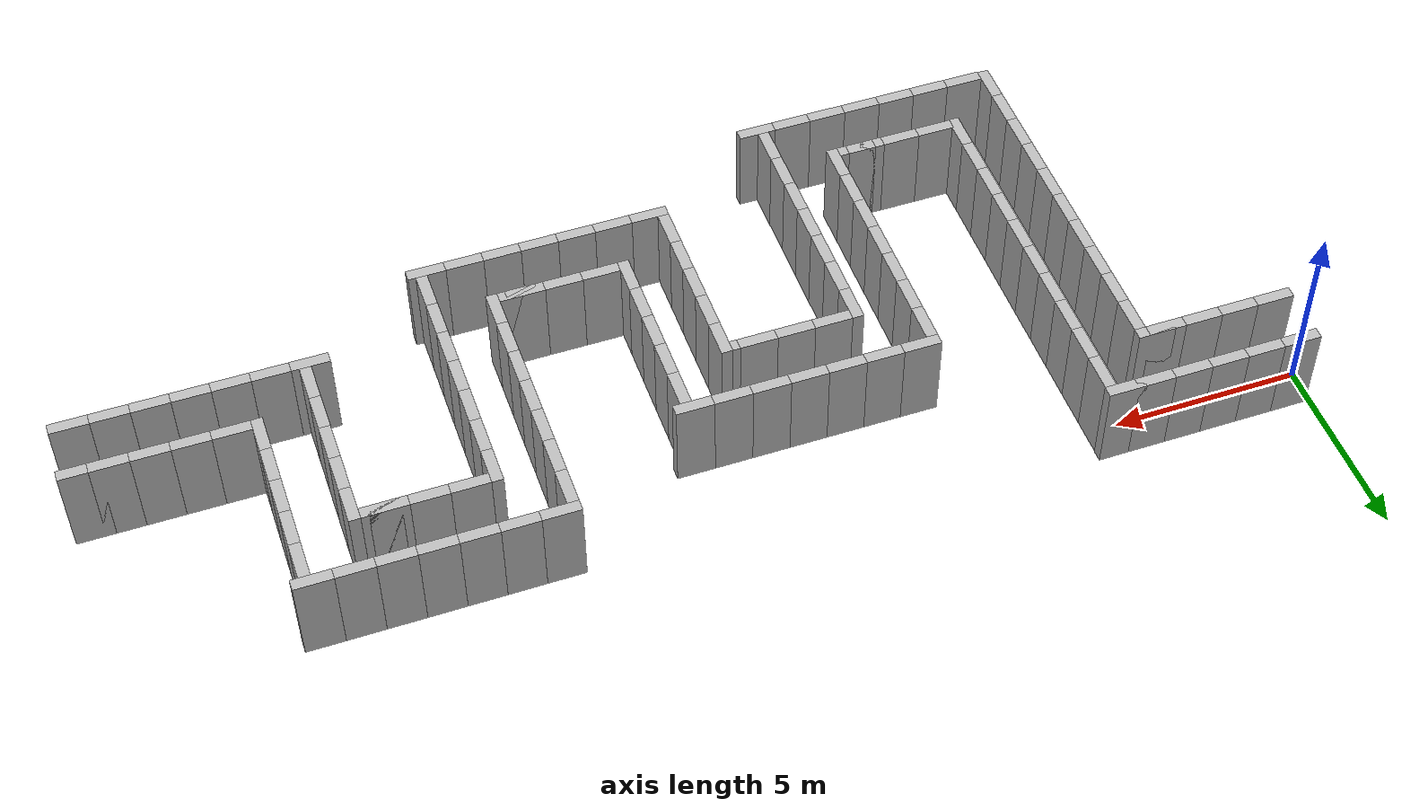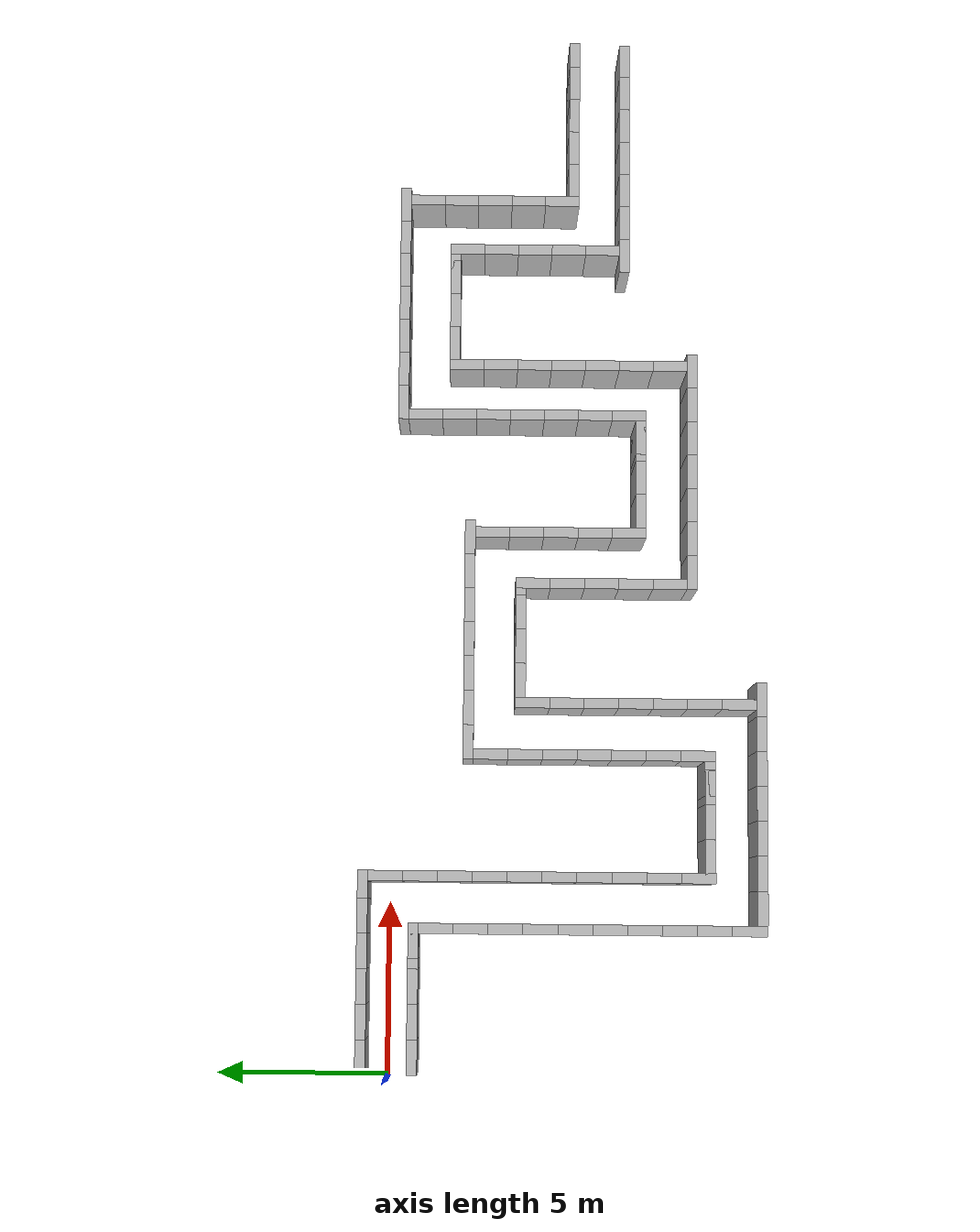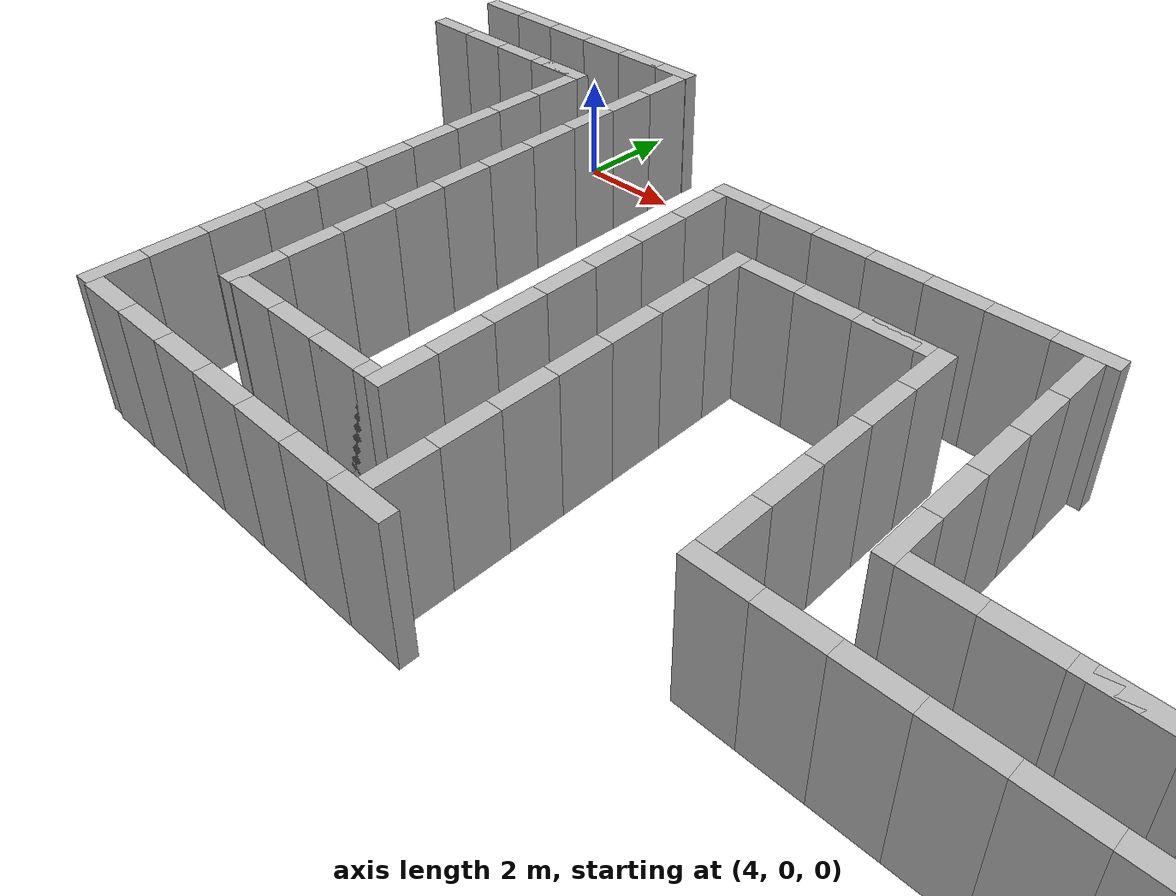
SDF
<?xml version="1.0" ?>
<sdf version="1.5">
  <model name="corridor_walls">

    <include>
      <name>w1</name>
      <pose>0.6 0.74 0 0 0 0</pose>
      <uri>model://concrete_wall_1m</uri>
    </include>
    <include>
      <name>w2</name>
      <pose>1.6 0.74 0 0 0 0</pose>
      <uri>model://concrete_wall_1m</uri>
    </include>
    <include>
      <name>w3</name>
      <pose>2.6 0.74 0 0 0 0</pose>
      <uri>model://concrete_wall_1m</uri>
    </include>
    <include>
      <name>w4</name>
      <pose>3.6 0.74 0 0 0 0</pose>
      <uri>model://concrete_wall_1m</uri>
    </include>
    <include>
      <name>w5</name>
      <pose>4.6 0.74 0 0 0 0</pose>
      <uri>model://concrete_wall_1m</uri>
    </include>
    <include>
      <name>w6</name>
      <pose>5.4 0.74 0 0 0 0</pose>
      <uri>model://concrete_wall_1m</uri>
    </include>

    <include>
      <name>w7</name>
      <pose>5.74 0.09 0 0 0 1.5708</pose>
      <uri>model://concrete_wall_1m</uri>
    </include>
    <include>
      <name>w8</name>
      <pose>5.74 -0.91 0 0 0 1.5708</pose>
      <uri>model://concrete_wall_1m</uri>
    </include>
    <include>
      <name>w9</name>
      <pose>5.74 -1.91 0 0 0 1.5708</pose>
      <uri>model://concrete_wall_1m</uri>
    </include>
    <include>
      <name>w10</name>
      <pose>5.74 -2.91 0 0 0 1.5708</pose>
      <uri>model://concrete_wall_1m</uri>
    </include>
    <include>
      <name>w11</name>
      <pose>5.74 -3.91 0 0 0 1.5708</pose>
      <uri>model://concrete_wall_1m</uri>
    </include>
    <include>
      <name>w12</name>
      <pose>5.74 -4.91 0 0 0 1.5708</pose>
      <uri>model://concrete_wall_1m</uri>
    </include>
    <include>
      <name>w13</name>
      <pose>5.74 -5.91 0 0 0 1.5708</pose>
      <uri>model://concrete_wall_1m</uri>
    </include>
    <include>
      <name>w14</name>
      <pose>5.74 -6.91 0 0 0 1.5708</pose>
      <uri>model://concrete_wall_1m</uri>
    </include>
    <include>
      <name>w15</name>
      <pose>5.74 -7.91 0 0 0 1.5708</pose>
      <uri>model://concrete_wall_1m</uri>
    </include>
    <include>
      <name>w16</name>
      <pose>5.74 -8.91 0 0 0 1.5708</pose>
      <uri>model://concrete_wall_1m</uri>
    </include>

    <include>
      <name>e1</name>
      <pose>0.6 -0.73 0 0 0 0</pose>
      <uri>model://concrete_wall_1m</uri>
    </include>
    <include>
      <name>e2</name>
      <pose>1.6 -0.73 0 0 0 0</pose>
      <uri>model://concrete_wall_1m</uri>
    </include>
    <include>
      <name>e3</name>
      <pose>2.6 -0.73 0 0 0 0</pose>
      <uri>model://concrete_wall_1m</uri>
    </include>
    <include>
      <name>e4</name>
      <pose>3.6 -0.73 0 0 0 0</pose>
      <uri>model://concrete_wall_1m</uri>
    </include>
    <include>
      <name>e5</name>
      <pose>3.9 -0.73 0 0 0 0</pose>
      <uri>model://concrete_wall_1m</uri>
    </include>

    <include>
      <name>e6</name>
      <pose>4.25 -1.37 0 0 0 1.5708</pose>
      <uri>model://concrete_wall_1m</uri>
    </include>
    <include>
      <name>e7</name>
      <pose>4.25 -2.37 0 0 0 1.5708</pose>
      <uri>model://concrete_wall_1m</uri>
    </include>
    <include>
      <name>e8</name>
      <pose>4.25 -3.37 0 0 0 1.5708</pose>
      <uri>model://concrete_wall_1m</uri>
    </include>
    <include>
      <name>e9</name>
      <pose>4.25 -4.37 0 0 0 1.5708</pose>
      <uri>model://concrete_wall_1m</uri>
    </include>
    <include>
      <name>e10</name>
      <pose>4.25 -5.37 0 0 0 1.5708</pose>
      <uri>model://concrete_wall_1m</uri>
    </include>
    <include>
      <name>e11</name>
      <pose>4.25 -6.37 0 0 0 1.5708</pose>
      <uri>model://concrete_wall_1m</uri>
    </include>
    <include>
      <name>e12</name>
      <pose>4.25 -7.37 0 0 0 1.5708</pose>
      <uri>model://concrete_wall_1m</uri>
    </include>
    <include>
      <name>e13</name>
      <pose>4.25 -8.37 0 0 0 1.5708</pose>
      <uri>model://concrete_wall_1m</uri>
    </include>
    <include>
      <name>e14</name>
      <pose>4.25 -9.37 0 0 0 1.5708</pose>
      <uri>model://concrete_wall_1m</uri>
    </include>
    <include>
      <name>e15</name>
      <pose>4.25 -10.37 0 0 0 1.5708</pose>
      <uri>model://concrete_wall_1m</uri>
    </include>

    <include>
      <name>e16</name>
      <pose>4.9 -10.75 0 0 0 0</pose>
      <uri>model://concrete_wall_1m</uri>
    </include>
    <include>
      <name>e17</name>
      <pose>5.9 -10.75 0 0 0 0</pose>
      <uri>model://concrete_wall_1m</uri>
    </include>
    <include>
      <name>e18</name>
      <pose>6.9 -10.75 0 0 0 0</pose>
      <uri>model://concrete_wall_1m</uri>
    </include>
    <include>
      <name>e19</name>
      <pose>7.9 -10.75 0 0 0 0</pose>
      <uri>model://concrete_wall_1m</uri>
    </include>
    <include>
      <name>e20</name>
      <pose>8.9 -10.75 0 0 0 0</pose>
      <uri>model://concrete_wall_1m</uri>
    </include>
    <include>
      <name>e21</name>
      <pose>9.9 -10.75 0 0 0 0</pose>
      <uri>model://concrete_wall_1m</uri>
    </include>
    <include>
      <name>e22</name>
      <pose>10.9 -10.75 0 0 0 0</pose>
      <uri>model://concrete_wall_1m</uri>
    </include>

    <include>
      <name>e23</name>
      <pose>9.25 -3.9 0 0 0 1.5708</pose>
      <uri>model://concrete_wall_1m</uri>
    </include>
    <include>
      <name>e24</name>
      <pose>9.25 -4.9 0 0 0 1.5708</pose>
      <uri>model://concrete_wall_1m</uri>
    </include>
    <include>
      <name>e25</name>
      <pose>9.25 -5.9 0 0 0 1.5708</pose>
      <uri>model://concrete_wall_1m</uri>
    </include>
    <include>
      <name>e26</name>
      <pose>9.25 -6.9 0 0 0 1.5708</pose>
      <uri>model://concrete_wall_1m</uri>
    </include>
    <include>
      <name>e27</name>
      <pose>9.25 -7.9 0 0 0 1.5708</pose>
      <uri>model://concrete_wall_1m</uri>
    </include>
    <include>
      <name>f28</name>
      <pose>9.25 -8.9 0 0 0 1.5708</pose>
      <uri>model://concrete_wall_1m</uri>
    </include>
    <include>
      <name>f29</name>
      <pose>9.25 -2.9 0 0 0 1.5708</pose>
      <uri>model://concrete_wall_1m</uri>
    </include>

    <include>
      <name>e28</name>
      <pose>14.25 -4.1 0 0 0 1.5708</pose>
      <uri>model://concrete_wall_1m</uri>
    </include>
    <include>
      <name>e29</name>
      <pose>14.25 -5.1 0 0 0 1.5708</pose>
      <uri>model://concrete_wall_1m</uri>
    </include>
    <include>
      <name>e30</name>
      <pose>14.25 -6.1 0 0 0 1.5708</pose>
      <uri>model://concrete_wall_1m</uri>
    </include>
    <include>
      <name>e31</name>
      <pose>14.25 -7.1 0 0 0 1.5708</pose>
      <uri>model://concrete_wall_1m</uri>
    </include>
    <include>
      <name>e32</name>
      <pose>14.25 -8.1 0 0 0 1.5708</pose>
      <uri>model://concrete_wall_1m</uri>
    </include>

    <include>
      <name>e33</name>
      <pose>20.75 -4.1 0 0 0 1.5708</pose>
      <uri>model://concrete_wall_1m</uri>
    </include>
    <include>
      <name>e34</name>
      <pose>20.75 -5.1 0 0 0 1.5708</pose>
      <uri>model://concrete_wall_1m</uri>
    </include>
    <include>
      <name>e35</name>
      <pose>20.75 -6.1 0 0 0 1.5708</pose>
      <uri>model://concrete_wall_1m</uri>
    </include>
    <include>
      <name>e36</name>
      <pose>20.75 -7.1 0 0 0 1.5708</pose>
      <uri>model://concrete_wall_1m</uri>
    </include>
    <include>
      <name>e37</name>
      <pose>20.75 -8.1 0 0 0 1.5708</pose>
      <uri>model://concrete_wall_1m</uri>
    </include>

    <include>
      <name>e38</name>
      <pose>24.25 -4.1 0 0 0 1.5708</pose>
      <uri>model://concrete_wall_1m</uri>
    </include>
    <include>
      <name>e39</name>
      <pose>24.25 -5.1 0 0 0 1.5708</pose>
      <uri>model://concrete_wall_1m</uri>
    </include>
    <include>
      <name>e40</name>
      <pose>24.25 -6.1 0 0 0 1.5708</pose>
      <uri>model://concrete_wall_1m</uri>
    </include>
    <include>
      <name>e41</name>
      <pose>20.75 -2.1 0 0 0 1.5708</pose>
      <uri>model://concrete_wall_1m</uri>
    </include>
    <include>
      <name>e42</name>
      <pose>20.75 -3.1 0 0 0 1.5708</pose>
      <uri>model://concrete_wall_1m</uri>
    </include>

    <include>
      <name>e43</name>
      <pose>24.25 -3.1 0 0 0 1.5708</pose>
      <uri>model://concrete_wall_1m</uri>
    </include>
    <include>
      <name>e44</name>
      <pose>24.25 -2.1 0 0 0 1.5708</pose>
      <uri>model://concrete_wall_1m</uri>
    </include>

    <include>
      <name>e47</name>
      <pose>15.75 -5.9 0 0 0 1.5708</pose>
      <uri>model://concrete_wall_1m</uri>
    </include>
    <include>
      <name>e48</name>
      <pose>15.75 -6.9 0 0 0 1.5708</pose>
      <uri>model://concrete_wall_1m</uri>
    </include>
    <include>
      <name>e49</name>
      <pose>15.75 -4.9 0 0 0 1.5708</pose>
      <uri>model://concrete_wall_1m</uri>
    </include>
    <include>
      <name>e50</name>
      <pose>15.75 -3.9 0 0 0 1.5708</pose>
      <uri>model://concrete_wall_1m</uri>
    </include>
    <include>
      <name>e51</name>
      <pose>15.75 -2.9 0 0 0 1.5708</pose>
      <uri>model://concrete_wall_1m</uri>
    </include>

    <include>
      <name>e52</name>
      <pose>19.25 -5.9 0 0 0 1.5708</pose>
      <uri>model://concrete_wall_1m</uri>
    </include>
    <include>
      <name>e53</name>
      <pose>19.25 -6.9 0 0 0 1.5708</pose>
      <uri>model://concrete_wall_1m</uri>
    </include>
    <include>
      <name>e54</name>
      <pose>19.25 -4.9 0 0 0 1.5708</pose>
      <uri>model://concrete_wall_1m</uri>
    </include>
    <include>
      <name>e55</name>
      <pose>19.25 -3.9 0 0 0 1.5708</pose>
      <uri>model://concrete_wall_1m</uri>
    </include>
    <include>
      <name>e56</name>
      <pose>19.25 -2.9 0 0 0 1.5708</pose>
      <uri>model://concrete_wall_1m</uri>
    </include>
    <include>
      <name>e57</name>
      <pose>19.25 -1.9 0 0 0 1.5708</pose>
      <uri>model://concrete_wall_1m</uri>
    </include>
    <include>
      <name>e58</name>
      <pose>19.25 -0.9 0 0 0 1.5708</pose>
      <uri>model://concrete_wall_1m</uri>
    </include>

    <include>
      <name>e59</name>
      <pose>25.75 -4.9 0 0 0 1.5708</pose>
      <uri>model://concrete_wall_1m</uri>
    </include>
    <include>
      <name>e60</name>
      <pose>25.75 -3.9 0 0 0 1.5708</pose>
      <uri>model://concrete_wall_1m</uri>
    </include>
    <include>
      <name>e61</name>
      <pose>25.75 -2.9 0 0 0 1.5708</pose>
      <uri>model://concrete_wall_1m</uri>
    </include>
    <include>
      <name>e62</name>
      <pose>25.75 -1.9 0 0 0 1.5708</pose>
      <uri>model://concrete_wall_1m</uri>
    </include>
    <include>
      <name>e63</name>
      <pose>25.75 -0.9 0 0 0 1.5708</pose>
      <uri>model://concrete_wall_1m</uri>
    </include>

    <include>
      <name>e64</name>
      <pose>10.75 -10.1 0 0 0 1.5708</pose>
      <uri>model://concrete_wall_1m</uri>
    </include>
    <include>
      <name>e65</name>
      <pose>10.75 -9.1 0 0 0 1.5708</pose>
      <uri>model://concrete_wall_1m</uri>
    </include>
    <include>
      <name>e66</name>
      <pose>10.75 -8.1 0 0 0 1.5708</pose>
      <uri>model://concrete_wall_1m</uri>
    </include>
    <include>
      <name>e67</name>
      <pose>10.75 -7.1 0 0 0 1.5708</pose>
      <uri>model://concrete_wall_1m</uri>
    </include>
    <include>
      <name>e68</name>
      <pose>10.75 -6.1 0 0 0 1.5708</pose>
      <uri>model://concrete_wall_1m</uri>
    </include>
    <include>
      <name>e69</name>
      <pose>10.75 -5.1 0 0 0 1.5708</pose>
      <uri>model://concrete_wall_1m</uri>
    </include>
    <include>
      <name>e70</name>
      <pose>10.75 -4.1 0 0 0 1.5708</pose>
      <uri>model://concrete_wall_1m</uri>
    </include>

    <include>
      <name>g1</name>
      <pose>9.6 -2.25 0 0 0 0</pose>
      <uri>model://concrete_wall_1m</uri>
    </include>
    <include>
      <name>g2</name>
      <pose>10.6 -2.25 0 0 0 0</pose>
      <uri>model://concrete_wall_1m</uri>
    </include>
    <include>
      <name>g3</name>
      <pose>11.6 -2.25 0 0 0 0</pose>
      <uri>model://concrete_wall_1m</uri>
    </include>
    <include>
      <name>g4</name>
      <pose>12.6 -2.25 0 0 0 0</pose>
      <uri>model://concrete_wall_1m</uri>
    </include>
    <include>
      <name>g5</name>
      <pose>13.6 -2.25 0 0 0 0</pose>
      <uri>model://concrete_wall_1m</uri>
    </include>
    <include>
      <name>g6</name>
      <pose>14.6 -2.25 0 0 0 0</pose>
      <uri>model://concrete_wall_1m</uri>
    </include>
    <include>
      <name>g7</name>
      <pose>15.6 -2.25 0 0 0 0</pose>
      <uri>model://concrete_wall_1m</uri>
    </include>

    <include>
      <name>g8</name>
      <pose>14.6 -8.75 0 0 0 0</pose>
      <uri>model://concrete_wall_1m</uri>
    </include>
    <include>
      <name>g9</name>
      <pose>15.6 -8.75 0 0 0 0</pose>
      <uri>model://concrete_wall_1m</uri>
    </include>
    <include>
      <name>g10</name>
      <pose>16.6 -8.75 0 0 0 0</pose>
      <uri>model://concrete_wall_1m</uri>
    </include>
    <include>
      <name>g11</name>
      <pose>17.6 -8.75 0 0 0 0</pose>
      <uri>model://concrete_wall_1m</uri>
    </include>
    <include>
      <name>g12</name>
      <pose>18.6 -8.75 0 0 0 0</pose>
      <uri>model://concrete_wall_1m</uri>
    </include>
    <include>
      <name>g13</name>
      <pose>19.6 -8.75 0 0 0 0</pose>
      <uri>model://concrete_wall_1m</uri>
    </include>
    <include>
      <name>g14</name>
      <pose>20.6 -8.75 0 0 0 0</pose>
      <uri>model://concrete_wall_1m</uri>
    </include>

    <include>
      <name>g15</name>
      <pose>19.6 -0.25 0 0 0 0</pose>
      <uri>model://concrete_wall_1m</uri>
    </include>
    <include>
      <name>g16</name>
      <pose>20.6 -0.25 0 0 0 0</pose>
      <uri>model://concrete_wall_1m</uri>
    </include>
    <include>
      <name>g17</name>
      <pose>21.6 -0.25 0 0 0 0</pose>
      <uri>model://concrete_wall_1m</uri>
    </include>
    <include>
      <name>g18</name>
      <pose>22.6 -0.25 0 0 0 0</pose>
      <uri>model://concrete_wall_1m</uri>
    </include>
    <include>
      <name>g19</name>
      <pose>23.6 -0.25 0 0 0 0</pose>
      <uri>model://concrete_wall_1m</uri>
    </include>
    <include>
      <name>g20</name>
      <pose>24.6 -0.25 0 0 0 0</pose>
      <uri>model://concrete_wall_1m</uri>
    </include>
    <include>
      <name>g21</name>
      <pose>25.6 -0.25 0 0 0 0</pose>
      <uri>model://concrete_wall_1m</uri>
    </include>

    <include>
      <name>g22</name>
      <pose>30.1 -6.75 0 0 0 0</pose>
      <uri>model://concrete_wall_1m</uri>
    </include>
    <include>
      <name>g23</name>
      <pose>29.1 -6.75 0 0 0 0</pose>
      <uri>model://concrete_wall_1m</uri>
    </include>
    <include>
      <name>g24</name>
      <pose>28.1 -6.75 0 0 0 0</pose>
      <uri>model://concrete_wall_1m</uri>
    </include>
    <include>
      <name>g25</name>
      <pose>27.1 -6.75 0 0 0 0</pose>
      <uri>model://concrete_wall_1m</uri>
    </include>
    <include>
      <name>g26</name>
      <pose>26.1 -6.75 0 0 0 0</pose>
      <uri>model://concrete_wall_1m</uri>
    </include>
    <include>
      <name>g27</name>
      <pose>25.1 -6.75 0 0 0 0</pose>
      <uri>model://concrete_wall_1m</uri>
    </include>
    <include>
      <name>g28</name>
      <pose>24.1 -6.75 0 0 0 0</pose>
      <uri>model://concrete_wall_1m</uri>
    </include>

    <include>
      <name>h1</name>
      <pose>21.4 -1.75 0 0 0 0</pose>
      <uri>model://concrete_wall_1m</uri>
    </include>
    <include>
      <name>h2</name>
      <pose>22.4 -1.75 0 0 0 0</pose>
      <uri>model://concrete_wall_1m</uri>
    </include>
    <include>
      <name>h3</name>
      <pose>23.4 -1.75 0 0 0 0</pose>
      <uri>model://concrete_wall_1m</uri>
    </include>
    <include>
      <name>h4</name>
      <pose>23.6 -1.75 0 0 0 0</pose>
      <uri>model://concrete_wall_1m</uri>
    </include>

    <include>
      <name>h5</name>
      <pose>26.4 -5.25 0 0 0 0</pose>
      <uri>model://concrete_wall_1m</uri>
    </include>
    <include>
      <name>h6</name>
      <pose>27.4 -5.25 0 0 0 0</pose>
      <uri>model://concrete_wall_1m</uri>
    </include>
    <include>
      <name>h7</name>
      <pose>28.4 -5.25 0 0 0 0</pose>
      <uri>model://concrete_wall_1m</uri>
    </include>
    <include>
      <name>h8</name>
      <pose>29.4 -5.25 0 0 0 0</pose>
      <uri>model://concrete_wall_1m</uri>
    </include>
    <include>
      <name>h9</name>
      <pose>30.15 -5.25 0 0 0 0</pose>
      <uri>model://concrete_wall_1m</uri>
    </include>

    <include>
      <name>h10</name>
      <pose>16.4 -7.25 0 0 0 0</pose>
      <uri>model://concrete_wall_1m</uri>
    </include>
    <include>
      <name>h11</name>
      <pose>17.4 -7.25 0 0 0 0</pose>
      <uri>model://concrete_wall_1m</uri>
    </include>
    <include>
      <name>h12</name>
      <pose>18.4 -7.25 0 0 0 0</pose>
      <uri>model://concrete_wall_1m</uri>
    </include>
    <include>
      <name>h13</name>
      <pose>18.6 -7.25 0 0 0 0</pose>
      <uri>model://concrete_wall_1m</uri>
    </include>

    <include>
      <name>h14</name>
      <pose>11.4 -3.75 0 0 0 0</pose>
      <uri>model://concrete_wall_1m</uri>
    </include>
    <include>
      <name>h15</name>
      <pose>12.4 -3.75 0 0 0 0</pose>
      <uri>model://concrete_wall_1m</uri>
    </include>
    <include>
      <name>h16</name>
      <pose>13.4 -3.75 0 0 0 0</pose>
      <uri>model://concrete_wall_1m</uri>
    </include>
    <include>
      <name>h17</name>
      <pose>13.6 -3.75 0 0 0 0</pose>
      <uri>model://concrete_wall_1m</uri>
    </include>

    <include>
      <name>h18</name>
      <pose>6.35 -9.25 0 0 0 0</pose>
      <uri>model://concrete_wall_1m</uri>
    </include>
    <include>
      <name>h19</name>
      <pose>7.35 -9.25 0 0 0 0</pose>
      <uri>model://concrete_wall_1m</uri>
    </include>
    <include>
      <name>h20</name>
      <pose>8.35 -9.25 0 0 0 0</pose>
      <uri>model://concrete_wall_1m</uri>
    </include>
    <include>
      <name>h21</name>
      <pose>8.6 -9.25 0 0 0 0</pose>
      <uri>model://concrete_wall_1m</uri>
    </include>

  </model>
</sdf>

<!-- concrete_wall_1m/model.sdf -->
<sdf version="1.5">
  <model name="concrete_wall_1m">
    <static>true</static>
    <link name="link">
      <pose>0 0 1.25 0 0 0</pose>
      <collision name="collision">
        <geometry>
          <box>
            <size>1.0 0.3 2.5</size>
          </box>
        </geometry>
      </collision>
      <visual name="visual">
        <geometry>
          <box>
            <size>1.0 0.3 2.5</size>
          </box>
        </geometry>
        <material>
          <script>
            <uri>model://concrete_wall_1m/materials/scripts</uri>
            <uri>model://concrete_wall_1m/materials/textures</uri>
            <name>vrc/concrete_wall_1m</name>
          </script>
        </material>
      </visual>
    </link>
  </model>
</sdf>
